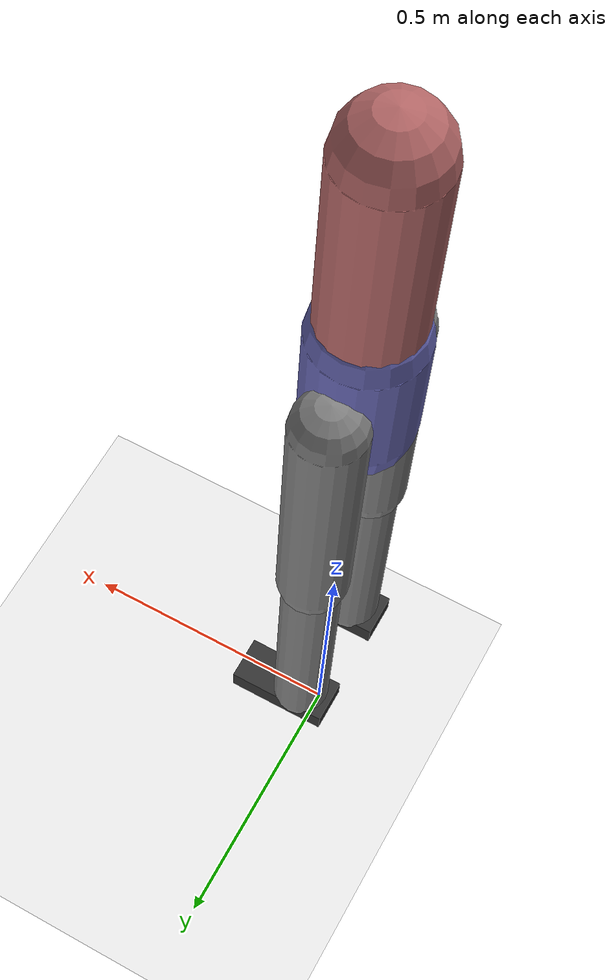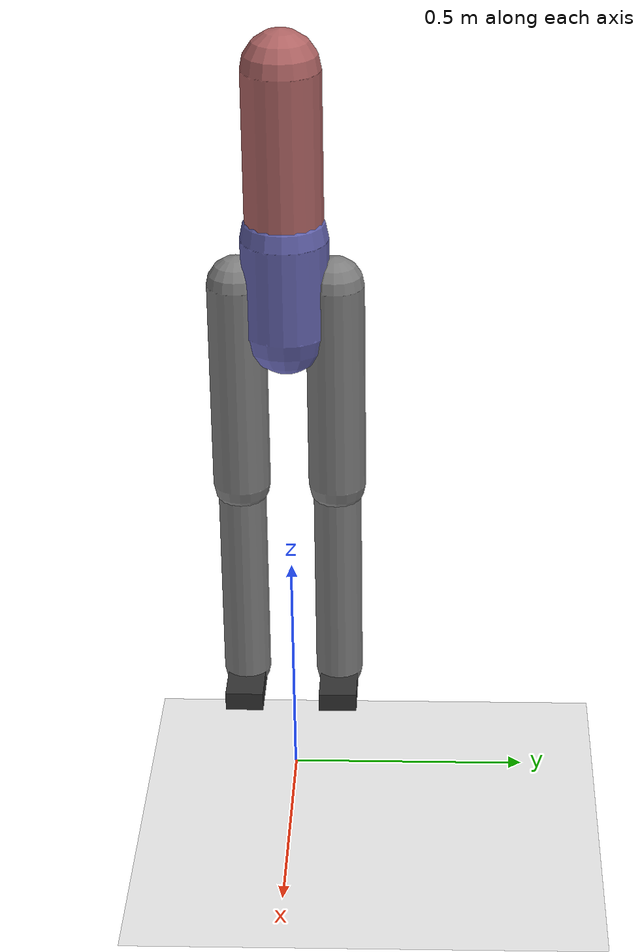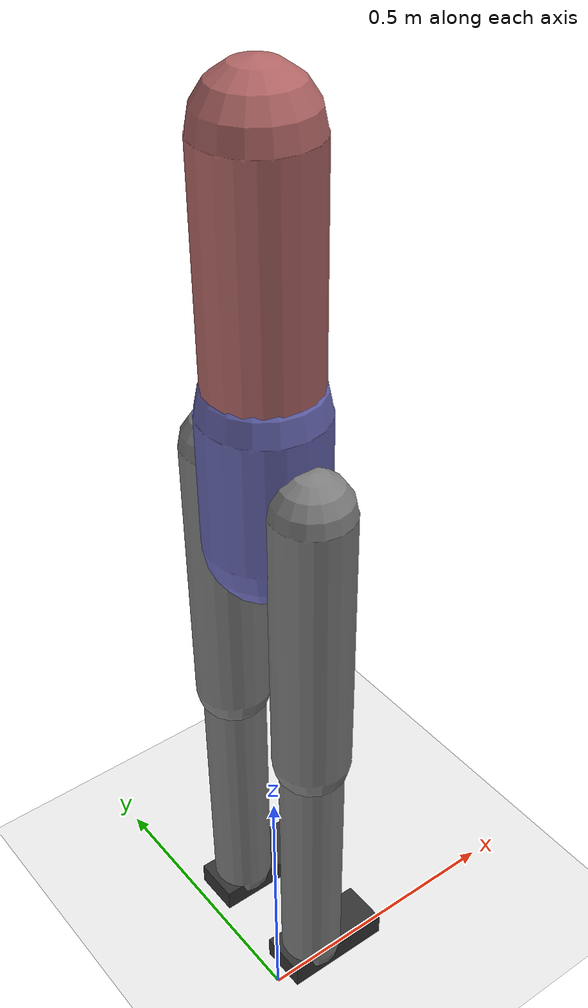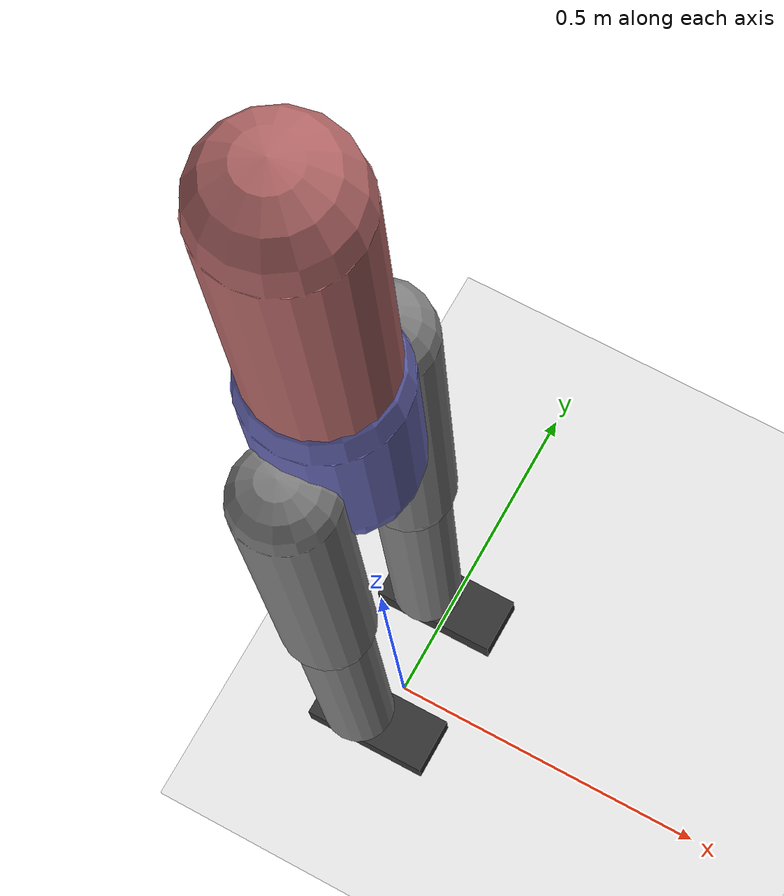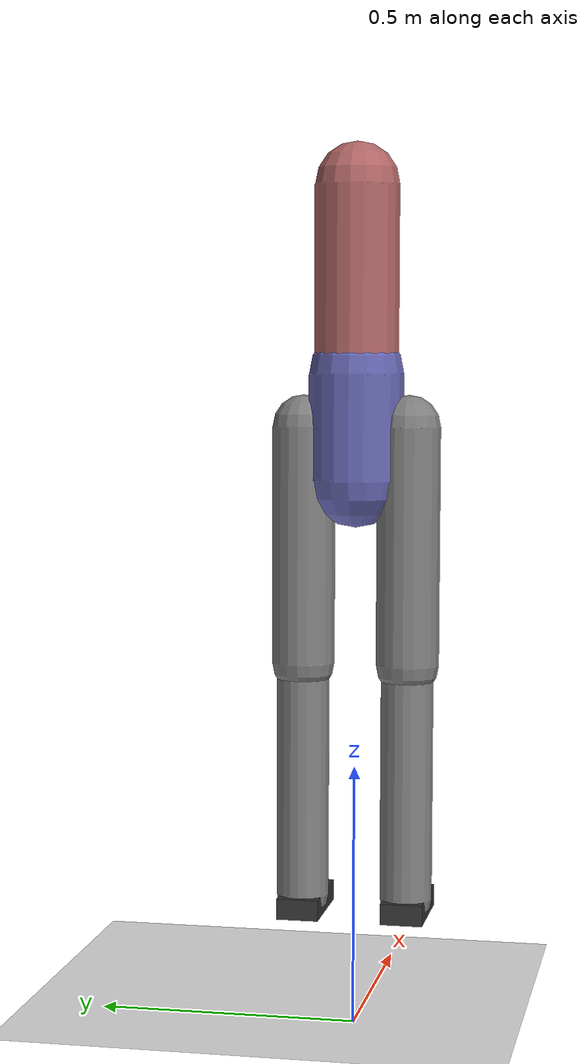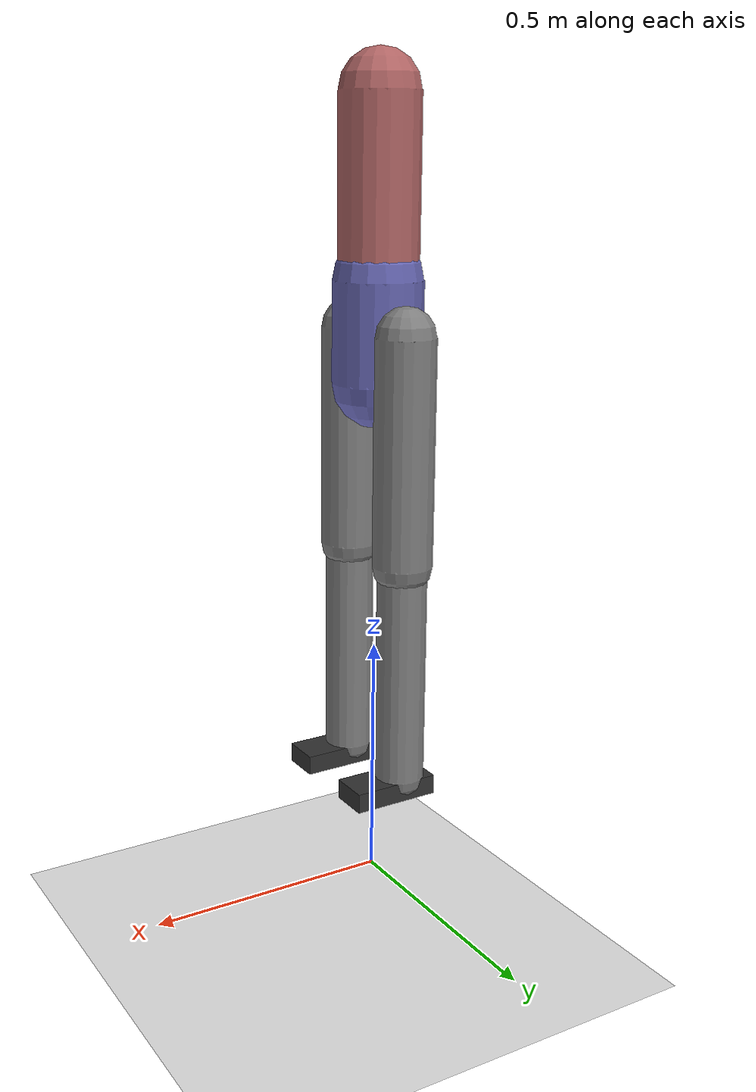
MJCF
<mujoco model="biped">
  <compiler angle="degree" coordinate="local"/>
  <option timestep="0.005" gravity="0 0 -9.81" iterations="50" solver="Newton"/>
  <default>
    <joint armature="0.01" damping="1" limited="true"/>
    <geom friction="1 0.5 0.5" density="800" margin="0.002" condim="3"/>
    <motor ctrlrange="-1 1" ctrllimited="true"/>
  </default>

  <worldbody>
    <geom name="floor" type="plane" size="10 10 0.1" rgba="0.92 0.92 0.92 1"/>

    <body name="torso" pos="0 0 1.25">
      <geom type="capsule" fromto="0 0 0 0 0 0.35" size="0.08" rgba="0.7 0.4 0.4 1"/>

      <joint name="rootx" type="slide" axis="1 0 0" limited="false"/>
      <joint name="rooty" type="slide" axis="0 1 0" limited="false"/>
      <joint name="rootz" type="slide" axis="0 0 1" limited="false"/>
      <joint name="rootroll"  type="hinge" axis="1 0 0" limited="false"/>
      <joint name="rootpitch" type="hinge" axis="0 1 0" limited="false"/>
      <joint name="rootyaw"   type="hinge" axis="0 0 1" limited="false"/>

      <body name="pelvis" pos="0 0 0.0">
        <geom type="capsule" fromto="0 0 0 0 0 -0.2" size="0.09" rgba="0.4 0.4 0.7 1"/>

        <body name="left_thigh" pos="0 0.1 -0.1">
          <joint name="left_hip" type="hinge" axis="1 0 0" range="-60 60"/>
          <geom type="capsule" fromto="0 0 0 0 0 -0.45" size="0.06"/>
          <body name="left_shin" pos="0 0 -0.45">
            <joint name="left_knee" type="hinge" axis="1 0 0" range="0 130"/>
            <geom type="capsule" fromto="0 0 0 0 0 -0.45" size="0.05"/>
            <body name="left_foot" pos="0 0 -0.45">
              <joint name="left_ankle" type="hinge" axis="1 0 0" range="-45 45"/>
              <geom type="box" size="0.09 0.04 0.02" pos="0.03 0 -0.02" rgba="0.2 0.2 0.2 1"/>
            </body>
          </body>
        </body>

        <body name="right_thigh" pos="0 -0.1 -0.1">
          <joint name="right_hip" type="hinge" axis="1 0 0" range="-60 60"/>
          <geom type="capsule" fromto="0 0 0 0 0 -0.45" size="0.06"/>
          <body name="right_shin" pos="0 0 -0.45">
            <joint name="right_knee" type="hinge" axis="1 0 0" range="0 130"/>
            <geom type="capsule" fromto="0 0 0 0 0 -0.45" size="0.05"/>
            <body name="right_foot" pos="0 0 -0.45">
              <joint name="right_ankle" type="hinge" axis="1 0 0" range="-45 45"/>
              <geom type="box" size="0.09 0.04 0.02" pos="0.03 0 -0.02" rgba="0.2 0.2 0.2 1"/>
            </body>
          </body>
        </body>

      </body>
    </body>
  </worldbody>

  <actuator>
    <motor joint="left_hip"   gear="80"/>
    <motor joint="left_knee"  gear="120"/>
    <motor joint="left_ankle" gear="60"/>
    <motor joint="right_hip"   gear="80"/>
    <motor joint="right_knee"  gear="120"/>
    <motor joint="right_ankle" gear="60"/>
  </actuator>
</mujoco>
